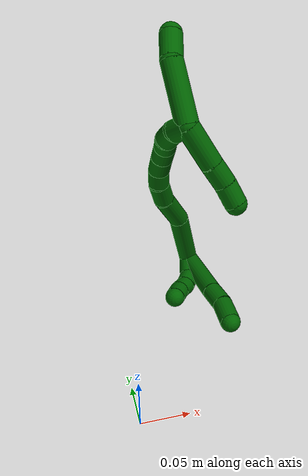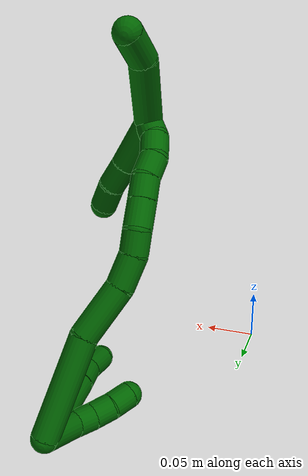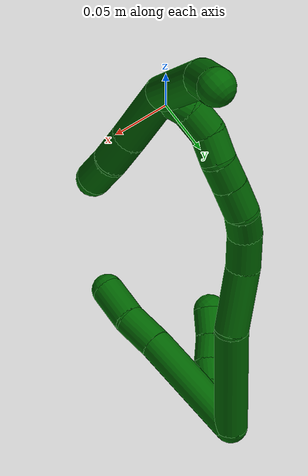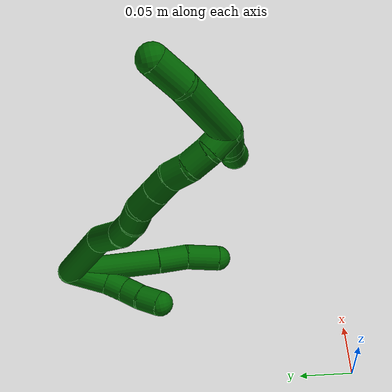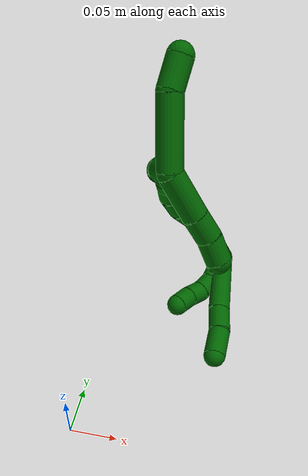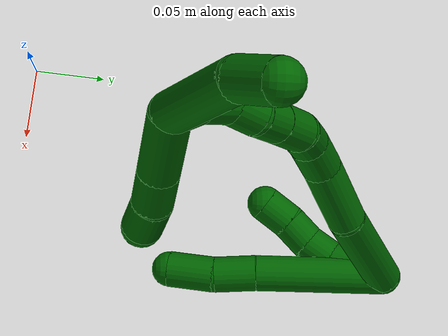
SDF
<sdf version="1.7">
 <world name="default">
  <model name="6">
   <static>0</static>
   <link name="6">
    <collision name="collision-cylinder-e_1_2_8">
     <pose>-0.003404 0.007132 -0.043475 -2.97899 -0.07711 0.884293</pose>
     <geometry><cylinder><radius>0.0125</radius><length>0.088376</length></cylinder></geometry>
     <surface>
      <friction><ode><mu>1.16</mu><mu2>1.16</mu2><slip1>0</slip1><slip2>0</slip2></ode></friction>
      <contact><ode><kp>1e+06</kp><kd>1</kd><max_vel>0</max_vel><min_depth>0.001</min_depth></ode></contact>
     </surface>
    </collision>
    <visual name="visual-cylinder-e_1_2_8">
     <pose>-0.003404 0.007132 -0.043475 -2.97899 -0.07711 0.884293</pose>
     <geometry><cylinder><radius>0.0125</radius><length>0.088376</length></cylinder></geometry>
     <material><ambient>0 0.392157 0.003922 1</ambient></material>
    </visual>
    <collision name="collision-cylinder-e_2_8_9">
     <pose>-0.007158 0.017228 -0.10125 -2.93723 -0.02398 0.232819</pose>
     <geometry><cylinder><radius>0.0125</radius><length>0.029214</length></cylinder></geometry>
     <surface>
      <friction><ode><mu>1.16</mu><mu2>1.16</mu2><slip1>0</slip1><slip2>0</slip2></ode></friction>
      <contact><ode><kp>1e+06</kp><kd>1</kd><max_vel>0</max_vel><min_depth>0.001</min_depth></ode></contact>
     </surface>
    </collision>
    <visual name="visual-cylinder-e_2_8_9">
     <pose>-0.007158 0.017228 -0.10125 -2.93723 -0.02398 0.232819</pose>
     <geometry><cylinder><radius>0.0125</radius><length>0.029214</length></cylinder></geometry>
     <material><ambient>0 0.392157 0.003922 1</ambient></material>
    </visual>
    <collision name="collision-cylinder-e_3_9_6">
     <pose>-0.011033 0.023818 -0.130945 -2.91029 -0.219235 1.5168</pose>
     <geometry><cylinder><radius>0.0125</radius><length>0.03241</length></cylinder></geometry>
     <surface>
      <friction><ode><mu>1.16</mu><mu2>1.16</mu2><slip1>0</slip1><slip2>0</slip2></ode></friction>
      <contact><ode><kp>1e+06</kp><kd>1</kd><max_vel>0</max_vel><min_depth>0.001</min_depth></ode></contact>
     </surface>
    </collision>
    <visual name="visual-cylinder-e_3_9_6">
     <pose>-0.011033 0.023818 -0.130945 -2.91029 -0.219235 1.5168</pose>
     <geometry><cylinder><radius>0.0125</radius><length>0.03241</length></cylinder></geometry>
     <material><ambient>0 0.392157 0.003922 1</ambient></material>
    </visual>
    <collision name="collision-cylinder-e_1_2_10">
     <pose>-0.008326 0.004531 -0.016481 -2.87332 -0.453306 2.08274</pose>
     <geometry><cylinder><radius>0.0125</radius><length>0.038025</length></cylinder></geometry>
     <surface>
      <friction><ode><mu>1.16</mu><mu2>1.16</mu2><slip1>0</slip1><slip2>0</slip2></ode></friction>
      <contact><ode><kp>1e+06</kp><kd>1</kd><max_vel>0</max_vel><min_depth>0.001</min_depth></ode></contact>
     </surface>
    </collision>
    <visual name="visual-cylinder-e_1_2_10">
     <pose>-0.008326 0.004531 -0.016481 -2.87332 -0.453306 2.08274</pose>
     <geometry><cylinder><radius>0.0125</radius><length>0.038025</length></cylinder></geometry>
     <material><ambient>0 0.392157 0.003922 1</ambient></material>
    </visual>
    <collision name="collision-cylinder-e_2_10_11">
     <pose>-0.023018 0.008917 -0.041141 3.12397 -0.661236 -3.09027</pose>
     <geometry><cylinder><radius>0.0125</radius><length>0.020729</length></cylinder></geometry>
     <surface>
      <friction><ode><mu>1.16</mu><mu2>1.16</mu2><slip1>0</slip1><slip2>0</slip2></ode></friction>
      <contact><ode><kp>1e+06</kp><kd>1</kd><max_vel>0</max_vel><min_depth>0.001</min_depth></ode></contact>
     </surface>
    </collision>
    <visual name="visual-cylinder-e_2_10_11">
     <pose>-0.023018 0.008917 -0.041141 3.12397 -0.661236 -3.09027</pose>
     <geometry><cylinder><radius>0.0125</radius><length>0.020729</length></cylinder></geometry>
     <material><ambient>0 0.392157 0.003922 1</ambient></material>
    </visual>
    <collision name="collision-cylinder-e_3_11_12">
     <pose>-0.035861 0.005811 -0.056418 2.7463 -0.699982 -2.13801</pose>
     <geometry><cylinder><radius>0.0125</radius><length>0.020114</length></cylinder></geometry>
     <surface>
      <friction><ode><mu>1.16</mu><mu2>1.16</mu2><slip1>0</slip1><slip2>0</slip2></ode></friction>
      <contact><ode><kp>1e+06</kp><kd>1</kd><max_vel>0</max_vel><min_depth>0.001</min_depth></ode></contact>
     </surface>
    </collision>
    <visual name="visual-cylinder-e_3_11_12">
     <pose>-0.035861 0.005811 -0.056418 2.7463 -0.699982 -2.13801</pose>
     <geometry><cylinder><radius>0.0125</radius><length>0.020114</length></cylinder></geometry>
     <material><ambient>0 0.392157 0.003922 1</ambient></material>
    </visual>
    <collision name="collision-cylinder-e_4_12_5">
     <pose>-0.048076 0.00048 -0.072069 2.8714 -0.57389 -2.27828</pose>
     <geometry><cylinder><radius>0.0125</radius><length>0.021132</length></cylinder></geometry>
     <surface>
      <friction><ode><mu>1.16</mu><mu2>1.16</mu2><slip1>0</slip1><slip2>0</slip2></ode></friction>
      <contact><ode><kp>1e+06</kp><kd>1</kd><max_vel>0</max_vel><min_depth>0.001</min_depth></ode></contact>
     </surface>
    </collision>
    <visual name="visual-cylinder-e_4_12_5">
     <pose>-0.048076 0.00048 -0.072069 2.8714 -0.57389 -2.27828</pose>
     <geometry><cylinder><radius>0.0125</radius><length>0.021132</length></cylinder></geometry>
     <material><ambient>0 0.392157 0.003922 1</ambient></material>
    </visual>
    <collision name="collision-cylinder-e_1_2_13">
     <pose>-0.000531 -0.041052 -0.022065 2.06399 -0.011384 -0.019042</pose>
     <geometry><cylinder><radius>0.0125</radius><length>0.093219</length></cylinder></geometry>
     <surface>
      <friction><ode><mu>1.16</mu><mu2>1.16</mu2><slip1>0</slip1><slip2>0</slip2></ode></friction>
      <contact><ode><kp>1e+06</kp><kd>1</kd><max_vel>0</max_vel><min_depth>0.001</min_depth></ode></contact>
     </surface>
    </collision>
    <visual name="visual-cylinder-e_1_2_13">
     <pose>-0.000531 -0.041052 -0.022065 2.06399 -0.011384 -0.019042</pose>
     <geometry><cylinder><radius>0.0125</radius><length>0.093219</length></cylinder></geometry>
     <material><ambient>0 0.392157 0.003922 1</ambient></material>
    </visual>
    <collision name="collision-cylinder-e_2_13_14">
     <pose>-0.007951 -0.103319 -0.056228 2.08906 -0.27499 -0.467669</pose>
     <geometry><cylinder><radius>0.0125</radius><length>0.05075</length></cylinder></geometry>
     <surface>
      <friction><ode><mu>1.16</mu><mu2>1.16</mu2><slip1>0</slip1><slip2>0</slip2></ode></friction>
      <contact><ode><kp>1e+06</kp><kd>1</kd><max_vel>0</max_vel><min_depth>0.001</min_depth></ode></contact>
     </surface>
    </collision>
    <visual name="visual-cylinder-e_2_13_14">
     <pose>-0.007951 -0.103319 -0.056228 2.08906 -0.27499 -0.467669</pose>
     <geometry><cylinder><radius>0.0125</radius><length>0.05075</length></cylinder></geometry>
     <material><ambient>0 0.392157 0.003922 1</ambient></material>
    </visual>
    <collision name="collision-cylinder-e_3_14_15">
     <pose>-0.015504 -0.13742 -0.075018 2.04974 -0.045599 -0.075037</pose>
     <geometry><cylinder><radius>0.0125</radius><length>0.02907</length></cylinder></geometry>
     <surface>
      <friction><ode><mu>1.16</mu><mu2>1.16</mu2><slip1>0</slip1><slip2>0</slip2></ode></friction>
      <contact><ode><kp>1e+06</kp><kd>1</kd><max_vel>0</max_vel><min_depth>0.001</min_depth></ode></contact>
     </surface>
    </collision>
    <visual name="visual-cylinder-e_3_14_15">
     <pose>-0.015504 -0.13742 -0.075018 2.04974 -0.045599 -0.075037</pose>
     <geometry><cylinder><radius>0.0125</radius><length>0.02907</length></cylinder></geometry>
     <material><ambient>0 0.392157 0.003922 1</ambient></material>
    </visual>
    <collision name="collision-cylinder-e_4_15_16">
     <pose>-0.014039 -0.159515 -0.086182 2.02296 0.204871 0.325513</pose>
     <geometry><cylinder><radius>0.0125</radius><length>0.020913</length></cylinder></geometry>
     <surface>
      <friction><ode><mu>1.16</mu><mu2>1.16</mu2><slip1>0</slip1><slip2>0</slip2></ode></friction>
      <contact><ode><kp>1e+06</kp><kd>1</kd><max_vel>0</max_vel><min_depth>0.001</min_depth></ode></contact>
     </surface>
    </collision>
    <visual name="visual-cylinder-e_4_15_16">
     <pose>-0.014039 -0.159515 -0.086182 2.02296 0.204871 0.325513</pose>
     <geometry><cylinder><radius>0.0125</radius><length>0.020913</length></cylinder></geometry>
     <material><ambient>0 0.392157 0.003922 1</ambient></material>
    </visual>
    <collision name="collision-cylinder-e_5_16_17">
     <pose>-0.009461 -0.177343 -0.099171 2.35016 0.199609 0.470533</pose>
     <geometry><cylinder><radius>0.0125</radius><length>0.024723</length></cylinder></geometry>
     <surface>
      <friction><ode><mu>1.16</mu><mu2>1.16</mu2><slip1>0</slip1><slip2>0</slip2></ode></friction>
      <contact><ode><kp>1e+06</kp><kd>1</kd><max_vel>0</max_vel><min_depth>0.001</min_depth></ode></contact>
     </surface>
    </collision>
    <visual name="visual-cylinder-e_5_16_17">
     <pose>-0.009461 -0.177343 -0.099171 2.35016 0.199609 0.470533</pose>
     <geometry><cylinder><radius>0.0125</radius><length>0.024723</length></cylinder></geometry>
     <material><ambient>0 0.392157 0.003922 1</ambient></material>
    </visual>
    <collision name="collision-cylinder-e_6_17_18">
     <pose>-0.004872 -0.192815 -0.11471 2.36846 0.214469 0.517084</pose>
     <geometry><cylinder><radius>0.0125</radius><length>0.020087</length></cylinder></geometry>
     <surface>
      <friction><ode><mu>1.16</mu><mu2>1.16</mu2><slip1>0</slip1><slip2>0</slip2></ode></friction>
      <contact><ode><kp>1e+06</kp><kd>1</kd><max_vel>0</max_vel><min_depth>0.001</min_depth></ode></contact>
     </surface>
    </collision>
    <visual name="visual-cylinder-e_6_17_18">
     <pose>-0.004872 -0.192815 -0.11471 2.36846 0.214469 0.517084</pose>
     <geometry><cylinder><radius>0.0125</radius><length>0.020087</length></cylinder></geometry>
     <material><ambient>0 0.392157 0.003922 1</ambient></material>
    </visual>
    <collision name="collision-cylinder-e_7_18_19">
     <pose>-0.002755 -0.205569 -0.130133 2.52921 -0.001956 -0.006188</pose>
     <geometry><cylinder><radius>0.0125</radius><length>0.020529</length></cylinder></geometry>
     <surface>
      <friction><ode><mu>1.16</mu><mu2>1.16</mu2><slip1>0</slip1><slip2>0</slip2></ode></friction>
      <contact><ode><kp>1e+06</kp><kd>1</kd><max_vel>0</max_vel><min_depth>0.001</min_depth></ode></contact>
     </surface>
    </collision>
    <visual name="visual-cylinder-e_7_18_19">
     <pose>-0.002755 -0.205569 -0.130133 2.52921 -0.001956 -0.006188</pose>
     <geometry><cylinder><radius>0.0125</radius><length>0.020529</length></cylinder></geometry>
     <material><ambient>0 0.392157 0.003922 1</ambient></material>
    </visual>
    <collision name="collision-cylinder-e_8_19_20">
     <pose>0.000156 -0.215874 -0.147322 2.67701 0.289697 1.10511</pose>
     <geometry><cylinder><radius>0.0125</radius><length>0.020518</length></cylinder></geometry>
     <surface>
      <friction><ode><mu>1.16</mu><mu2>1.16</mu2><slip1>0</slip1><slip2>0</slip2></ode></friction>
      <contact><ode><kp>1e+06</kp><kd>1</kd><max_vel>0</max_vel><min_depth>0.001</min_depth></ode></contact>
     </surface>
    </collision>
    <visual name="visual-cylinder-e_8_19_20">
     <pose>0.000156 -0.215874 -0.147322 2.67701 0.289697 1.10511</pose>
     <geometry><cylinder><radius>0.0125</radius><length>0.020518</length></cylinder></geometry>
     <material><ambient>0 0.392157 0.003922 1</ambient></material>
    </visual>
    <collision name="collision-cylinder-e_9_20_1">
     <pose>0.008283 -0.222001 -0.164593 2.94134 0.540729 2.44608</pose>
     <geometry><cylinder><radius>0.0125</radius><length>0.020191</length></cylinder></geometry>
     <surface>
      <friction><ode><mu>1.16</mu><mu2>1.16</mu2><slip1>0</slip1><slip2>0</slip2></ode></friction>
      <contact><ode><kp>1e+06</kp><kd>1</kd><max_vel>0</max_vel><min_depth>0.001</min_depth></ode></contact>
     </surface>
    </collision>
    <visual name="visual-cylinder-e_9_20_1">
     <pose>0.008283 -0.222001 -0.164593 2.94134 0.540729 2.44608</pose>
     <geometry><cylinder><radius>0.0125</radius><length>0.020191</length></cylinder></geometry>
     <material><ambient>0 0.392157 0.003922 1</ambient></material>
    </visual>
    <collision name="collision-cylinder-e_1_1_21">
     <pose>0.022078 -0.254407 -0.159959 1.16684 0.252198 0.166966</pose>
     <geometry><cylinder><radius>0.0125</radius><length>0.06892</length></cylinder></geometry>
     <surface>
      <friction><ode><mu>1.16</mu><mu2>1.16</mu2><slip1>0</slip1><slip2>0</slip2></ode></friction>
      <contact><ode><kp>1e+06</kp><kd>1</kd><max_vel>0</max_vel><min_depth>0.001</min_depth></ode></contact>
     </surface>
    </collision>
    <visual name="visual-cylinder-e_1_1_21">
     <pose>0.022078 -0.254407 -0.159959 1.16684 0.252198 0.166966</pose>
     <geometry><cylinder><radius>0.0125</radius><length>0.06892</length></cylinder></geometry>
     <material><ambient>0 0.392157 0.003922 1</ambient></material>
    </visual>
    <collision name="collision-cylinder-e_2_21_4">
     <pose>0.03806 -0.295837 -0.138386 0.904067 0.495045 0.244189</pose>
     <geometry><cylinder><radius>0.0125</radius><length>0.03108</length></cylinder></geometry>
     <surface>
      <friction><ode><mu>1.16</mu><mu2>1.16</mu2><slip1>0</slip1><slip2>0</slip2></ode></friction>
      <contact><ode><kp>1e+06</kp><kd>1</kd><max_vel>0</max_vel><min_depth>0.001</min_depth></ode></contact>
     </surface>
    </collision>
    <visual name="visual-cylinder-e_2_21_4">
     <pose>0.03806 -0.295837 -0.138386 0.904067 0.495045 0.244189</pose>
     <geometry><cylinder><radius>0.0125</radius><length>0.03108</length></cylinder></geometry>
     <material><ambient>0 0.392157 0.003922 1</ambient></material>
    </visual>
    <collision name="collision-cylinder-e_1_1_22">
     <pose>0.018245 -0.200213 -0.173962 -1.6085 0.199858 -0.207485</pose>
     <geometry><cylinder><radius>0.0125</radius><length>0.048008</length></cylinder></geometry>
     <surface>
      <friction><ode><mu>1.16</mu><mu2>1.16</mu2><slip1>0</slip1><slip2>0</slip2></ode></friction>
      <contact><ode><kp>1e+06</kp><kd>1</kd><max_vel>0</max_vel><min_depth>0.001</min_depth></ode></contact>
     </surface>
    </collision>
    <visual name="visual-cylinder-e_1_1_22">
     <pose>0.018245 -0.200213 -0.173962 -1.6085 0.199858 -0.207485</pose>
     <geometry><cylinder><radius>0.0125</radius><length>0.048008</length></cylinder></geometry>
     <material><ambient>0 0.392157 0.003922 1</ambient></material>
    </visual>
    <collision name="collision-cylinder-e_2_22_23">
     <pose>0.026056 -0.163976 -0.175436 -1.61693 0.234586 -0.245558</pose>
     <geometry><cylinder><radius>0.0125</radius><length>0.026201</length></cylinder></geometry>
     <surface>
      <friction><ode><mu>1.16</mu><mu2>1.16</mu2><slip1>0</slip1><slip2>0</slip2></ode></friction>
      <contact><ode><kp>1e+06</kp><kd>1</kd><max_vel>0</max_vel><min_depth>0.001</min_depth></ode></contact>
     </surface>
    </collision>
    <visual name="visual-cylinder-e_2_22_23">
     <pose>0.026056 -0.163976 -0.175436 -1.61693 0.234586 -0.245558</pose>
     <geometry><cylinder><radius>0.0125</radius><length>0.026201</length></cylinder></geometry>
     <material><ambient>0 0.392157 0.003922 1</ambient></material>
    </visual>
    <collision name="collision-cylinder-e_3_23_3">
     <pose>0.030285 -0.138546 -0.177914 -1.71854 0.091963 -0.106637</pose>
     <geometry><cylinder><radius>0.0125</radius><length>0.025791</length></cylinder></geometry>
     <surface>
      <friction><ode><mu>1.16</mu><mu2>1.16</mu2><slip1>0</slip1><slip2>0</slip2></ode></friction>
      <contact><ode><kp>1e+06</kp><kd>1</kd><max_vel>0</max_vel><min_depth>0.001</min_depth></ode></contact>
     </surface>
    </collision>
    <visual name="visual-cylinder-e_3_23_3">
     <pose>0.030285 -0.138546 -0.177914 -1.71854 0.091963 -0.106637</pose>
     <geometry><cylinder><radius>0.0125</radius><length>0.025791</length></cylinder></geometry>
     <material><ambient>0 0.392157 0.003922 1</ambient></material>
    </visual>
    <collision name="collision-sphere-3">
     <pose>0.031469 -0.125845 -0.179805 0 -0 0</pose>
     <geometry><sphere><radius>0.0125</radius></sphere></geometry>
     <surface>
      <friction><ode><mu>1.16</mu><mu2>1.16</mu2><slip1>0</slip1><slip2>0</slip2></ode></friction>
      <contact><ode><kp>1e+06</kp><kd>1</kd><max_vel>0</max_vel><min_depth>0.001</min_depth></ode></contact>
     </surface>
    </collision>
    <visual name="visual-sphere-3">
     <pose>0.031469 -0.125845 -0.179805 0 -0 0</pose>
     <geometry><sphere><radius>0.0125</radius></sphere></geometry>
     <material><ambient>0 0.392157 0.003922 1</ambient></material>
    </visual>
    <collision name="collision-sphere-23">
     <pose>0.029101 -0.151248 -0.176024 0 -0 0</pose>
     <geometry><sphere><radius>0.0125</radius></sphere></geometry>
     <surface>
      <friction><ode><mu>1.16</mu><mu2>1.16</mu2><slip1>0</slip1><slip2>0</slip2></ode></friction>
      <contact><ode><kp>1e+06</kp><kd>1</kd><max_vel>0</max_vel><min_depth>0.001</min_depth></ode></contact>
     </surface>
    </collision>
    <visual name="visual-sphere-23">
     <pose>0.029101 -0.151248 -0.176024 0 -0 0</pose>
     <geometry><sphere><radius>0.0125</radius></sphere></geometry>
     <material><ambient>0 0.392157 0.003922 1</ambient></material>
    </visual>
    <collision name="collision-sphere-22">
     <pose>0.023011 -0.176704 -0.174849 0 -0 0</pose>
     <geometry><sphere><radius>0.0125</radius></sphere></geometry>
     <surface>
      <friction><ode><mu>1.16</mu><mu2>1.16</mu2><slip1>0</slip1><slip2>0</slip2></ode></friction>
      <contact><ode><kp>1e+06</kp><kd>1</kd><max_vel>0</max_vel><min_depth>0.001</min_depth></ode></contact>
     </surface>
    </collision>
    <visual name="visual-sphere-22">
     <pose>0.023011 -0.176704 -0.174849 0 -0 0</pose>
     <geometry><sphere><radius>0.0125</radius></sphere></geometry>
     <material><ambient>0 0.392157 0.003922 1</ambient></material>
    </visual>
    <collision name="collision-sphere-4">
     <pose>0.045443 -0.306583 -0.12993 0 -0 0</pose>
     <geometry><sphere><radius>0.0125</radius></sphere></geometry>
     <surface>
      <friction><ode><mu>1.16</mu><mu2>1.16</mu2><slip1>0</slip1><slip2>0</slip2></ode></friction>
      <contact><ode><kp>1e+06</kp><kd>1</kd><max_vel>0</max_vel><min_depth>0.001</min_depth></ode></contact>
     </surface>
    </collision>
    <visual name="visual-sphere-4">
     <pose>0.045443 -0.306583 -0.12993 0 -0 0</pose>
     <geometry><sphere><radius>0.0125</radius></sphere></geometry>
     <material><ambient>0 0.392157 0.003922 1</ambient></material>
    </visual>
    <collision name="collision-sphere-21">
     <pose>0.030677 -0.285091 -0.146843 0 -0 0</pose>
     <geometry><sphere><radius>0.0125</radius></sphere></geometry>
     <surface>
      <friction><ode><mu>1.16</mu><mu2>1.16</mu2><slip1>0</slip1><slip2>0</slip2></ode></friction>
      <contact><ode><kp>1e+06</kp><kd>1</kd><max_vel>0</max_vel><min_depth>0.001</min_depth></ode></contact>
     </surface>
    </collision>
    <visual name="visual-sphere-21">
     <pose>0.030677 -0.285091 -0.146843 0 -0 0</pose>
     <geometry><sphere><radius>0.0125</radius></sphere></geometry>
     <material><ambient>0 0.392157 0.003922 1</ambient></material>
    </visual>
    <collision name="collision-sphere-1">
     <pose>0.01348 -0.223723 -0.173075 0 -0 0</pose>
     <geometry><sphere><radius>0.0125</radius></sphere></geometry>
     <surface>
      <friction><ode><mu>1.16</mu><mu2>1.16</mu2><slip1>0</slip1><slip2>0</slip2></ode></friction>
      <contact><ode><kp>1e+06</kp><kd>1</kd><max_vel>0</max_vel><min_depth>0.001</min_depth></ode></contact>
     </surface>
    </collision>
    <visual name="visual-sphere-1">
     <pose>0.01348 -0.223723 -0.173075 0 -0 0</pose>
     <geometry><sphere><radius>0.0125</radius></sphere></geometry>
     <material><ambient>0 0.392157 0.003922 1</ambient></material>
    </visual>
    <collision name="collision-sphere-11">
     <pose>-0.029382 0.008773 -0.04932 0 -0 0</pose>
     <geometry><sphere><radius>0.0125</radius></sphere></geometry>
     <surface>
      <friction><ode><mu>1.16</mu><mu2>1.16</mu2><slip1>0</slip1><slip2>0</slip2></ode></friction>
      <contact><ode><kp>1e+06</kp><kd>1</kd><max_vel>0</max_vel><min_depth>0.001</min_depth></ode></contact>
     </surface>
    </collision>
    <visual name="visual-sphere-11">
     <pose>-0.029382 0.008773 -0.04932 0 -0 0</pose>
     <geometry><sphere><radius>0.0125</radius></sphere></geometry>
     <material><ambient>0 0.392157 0.003922 1</ambient></material>
    </visual>
    <collision name="collision-sphere-10">
     <pose>-0.016653 0.009061 -0.032962 0 -0 0</pose>
     <geometry><sphere><radius>0.0125</radius></sphere></geometry>
     <surface>
      <friction><ode><mu>1.16</mu><mu2>1.16</mu2><slip1>0</slip1><slip2>0</slip2></ode></friction>
      <contact><ode><kp>1e+06</kp><kd>1</kd><max_vel>0</max_vel><min_depth>0.001</min_depth></ode></contact>
     </surface>
    </collision>
    <visual name="visual-sphere-10">
     <pose>-0.016653 0.009061 -0.032962 0 -0 0</pose>
     <geometry><sphere><radius>0.0125</radius></sphere></geometry>
     <material><ambient>0 0.392157 0.003922 1</ambient></material>
    </visual>
    <collision name="collision-sphere-6">
     <pose>-0.014557 0.027444 -0.146341 0 -0 0</pose>
     <geometry><sphere><radius>0.0125</radius></sphere></geometry>
     <surface>
      <friction><ode><mu>1.16</mu><mu2>1.16</mu2><slip1>0</slip1><slip2>0</slip2></ode></friction>
      <contact><ode><kp>1e+06</kp><kd>1</kd><max_vel>0</max_vel><min_depth>0.001</min_depth></ode></contact>
     </surface>
    </collision>
    <visual name="visual-sphere-6">
     <pose>-0.014557 0.027444 -0.146341 0 -0 0</pose>
     <geometry><sphere><radius>0.0125</radius></sphere></geometry>
     <material><ambient>0 0.392157 0.003922 1</ambient></material>
    </visual>
    <collision name="collision-sphere-9">
     <pose>-0.007508 0.020192 -0.115548 0 -0 0</pose>
     <geometry><sphere><radius>0.0125</radius></sphere></geometry>
     <surface>
      <friction><ode><mu>1.16</mu><mu2>1.16</mu2><slip1>0</slip1><slip2>0</slip2></ode></friction>
      <contact><ode><kp>1e+06</kp><kd>1</kd><max_vel>0</max_vel><min_depth>0.001</min_depth></ode></contact>
     </surface>
    </collision>
    <visual name="visual-sphere-9">
     <pose>-0.007508 0.020192 -0.115548 0 -0 0</pose>
     <geometry><sphere><radius>0.0125</radius></sphere></geometry>
     <material><ambient>0 0.392157 0.003922 1</ambient></material>
    </visual>
    <collision name="collision-sphere-2">
     <geometry><sphere><radius>0.0125</radius></sphere></geometry>
     <surface>
      <friction><ode><mu>1.16</mu><mu2>1.16</mu2><slip1>0</slip1><slip2>0</slip2></ode></friction>
      <contact><ode><kp>1e+06</kp><kd>1</kd><max_vel>0</max_vel><min_depth>0.001</min_depth></ode></contact>
     </surface>
    </collision>
    <visual name="visual-sphere-2">
     <geometry><sphere><radius>0.0125</radius></sphere></geometry>
     <material><ambient>0 0.392157 0.003922 1</ambient></material>
    </visual>
    <collision name="collision-sphere-19">
     <pose>-0.002775 -0.211469 -0.138532 0 -0 0</pose>
     <geometry><sphere><radius>0.0125</radius></sphere></geometry>
     <surface>
      <friction><ode><mu>1.16</mu><mu2>1.16</mu2><slip1>0</slip1><slip2>0</slip2></ode></friction>
      <contact><ode><kp>1e+06</kp><kd>1</kd><max_vel>0</max_vel><min_depth>0.001</min_depth></ode></contact>
     </surface>
    </collision>
    <visual name="visual-sphere-19">
     <pose>-0.002775 -0.211469 -0.138532 0 -0 0</pose>
     <geometry><sphere><radius>0.0125</radius></sphere></geometry>
     <material><ambient>0 0.392157 0.003922 1</ambient></material>
    </visual>
    <collision name="collision-sphere-8">
     <pose>-0.006808 0.014265 -0.086951 0 -0 0</pose>
     <geometry><sphere><radius>0.0125</radius></sphere></geometry>
     <surface>
      <friction><ode><mu>1.16</mu><mu2>1.16</mu2><slip1>0</slip1><slip2>0</slip2></ode></friction>
      <contact><ode><kp>1e+06</kp><kd>1</kd><max_vel>0</max_vel><min_depth>0.001</min_depth></ode></contact>
     </surface>
    </collision>
    <visual name="visual-sphere-8">
     <pose>-0.006808 0.014265 -0.086951 0 -0 0</pose>
     <geometry><sphere><radius>0.0125</radius></sphere></geometry>
     <material><ambient>0 0.392157 0.003922 1</ambient></material>
    </visual>
    <collision name="collision-sphere-12">
     <pose>-0.04234 0.002849 -0.063517 0 -0 0</pose>
     <geometry><sphere><radius>0.0125</radius></sphere></geometry>
     <surface>
      <friction><ode><mu>1.16</mu><mu2>1.16</mu2><slip1>0</slip1><slip2>0</slip2></ode></friction>
      <contact><ode><kp>1e+06</kp><kd>1</kd><max_vel>0</max_vel><min_depth>0.001</min_depth></ode></contact>
     </surface>
    </collision>
    <visual name="visual-sphere-12">
     <pose>-0.04234 0.002849 -0.063517 0 -0 0</pose>
     <geometry><sphere><radius>0.0125</radius></sphere></geometry>
     <material><ambient>0 0.392157 0.003922 1</ambient></material>
    </visual>
    <collision name="collision-sphere-5">
     <pose>-0.053812 -0.001888 -0.08062 0 -0 0</pose>
     <geometry><sphere><radius>0.0125</radius></sphere></geometry>
     <surface>
      <friction><ode><mu>1.16</mu><mu2>1.16</mu2><slip1>0</slip1><slip2>0</slip2></ode></friction>
      <contact><ode><kp>1e+06</kp><kd>1</kd><max_vel>0</max_vel><min_depth>0.001</min_depth></ode></contact>
     </surface>
    </collision>
    <visual name="visual-sphere-5">
     <pose>-0.053812 -0.001888 -0.08062 0 -0 0</pose>
     <geometry><sphere><radius>0.0125</radius></sphere></geometry>
     <material><ambient>0 0.392157 0.003922 1</ambient></material>
    </visual>
    <collision name="collision-sphere-13">
     <pose>-0.001061 -0.082104 -0.044131 0 -0 0</pose>
     <geometry><sphere><radius>0.0125</radius></sphere></geometry>
     <surface>
      <friction><ode><mu>1.16</mu><mu2>1.16</mu2><slip1>0</slip1><slip2>0</slip2></ode></friction>
      <contact><ode><kp>1e+06</kp><kd>1</kd><max_vel>0</max_vel><min_depth>0.001</min_depth></ode></contact>
     </surface>
    </collision>
    <visual name="visual-sphere-13">
     <pose>-0.001061 -0.082104 -0.044131 0 -0 0</pose>
     <geometry><sphere><radius>0.0125</radius></sphere></geometry>
     <material><ambient>0 0.392157 0.003922 1</ambient></material>
    </visual>
    <collision name="collision-sphere-14">
     <pose>-0.014842 -0.124533 -0.068326 0 -0 0</pose>
     <geometry><sphere><radius>0.0125</radius></sphere></geometry>
     <surface>
      <friction><ode><mu>1.16</mu><mu2>1.16</mu2><slip1>0</slip1><slip2>0</slip2></ode></friction>
      <contact><ode><kp>1e+06</kp><kd>1</kd><max_vel>0</max_vel><min_depth>0.001</min_depth></ode></contact>
     </surface>
    </collision>
    <visual name="visual-sphere-14">
     <pose>-0.014842 -0.124533 -0.068326 0 -0 0</pose>
     <geometry><sphere><radius>0.0125</radius></sphere></geometry>
     <material><ambient>0 0.392157 0.003922 1</ambient></material>
    </visual>
    <collision name="collision-sphere-15">
     <pose>-0.016167 -0.150306 -0.081709 0 -0 0</pose>
     <geometry><sphere><radius>0.0125</radius></sphere></geometry>
     <surface>
      <friction><ode><mu>1.16</mu><mu2>1.16</mu2><slip1>0</slip1><slip2>0</slip2></ode></friction>
      <contact><ode><kp>1e+06</kp><kd>1</kd><max_vel>0</max_vel><min_depth>0.001</min_depth></ode></contact>
     </surface>
    </collision>
    <visual name="visual-sphere-15">
     <pose>-0.016167 -0.150306 -0.081709 0 -0 0</pose>
     <geometry><sphere><radius>0.0125</radius></sphere></geometry>
     <material><ambient>0 0.392157 0.003922 1</ambient></material>
    </visual>
    <collision name="collision-sphere-16">
     <pose>-0.011912 -0.168724 -0.090655 0 -0 0</pose>
     <geometry><sphere><radius>0.0125</radius></sphere></geometry>
     <surface>
      <friction><ode><mu>1.16</mu><mu2>1.16</mu2><slip1>0</slip1><slip2>0</slip2></ode></friction>
      <contact><ode><kp>1e+06</kp><kd>1</kd><max_vel>0</max_vel><min_depth>0.001</min_depth></ode></contact>
     </surface>
    </collision>
    <visual name="visual-sphere-16">
     <pose>-0.011912 -0.168724 -0.090655 0 -0 0</pose>
     <geometry><sphere><radius>0.0125</radius></sphere></geometry>
     <material><ambient>0 0.392157 0.003922 1</ambient></material>
    </visual>
    <collision name="collision-sphere-17">
     <pose>-0.00701 -0.185962 -0.107686 0 -0 0</pose>
     <geometry><sphere><radius>0.0125</radius></sphere></geometry>
     <surface>
      <friction><ode><mu>1.16</mu><mu2>1.16</mu2><slip1>0</slip1><slip2>0</slip2></ode></friction>
      <contact><ode><kp>1e+06</kp><kd>1</kd><max_vel>0</max_vel><min_depth>0.001</min_depth></ode></contact>
     </surface>
    </collision>
    <visual name="visual-sphere-17">
     <pose>-0.00701 -0.185962 -0.107686 0 -0 0</pose>
     <geometry><sphere><radius>0.0125</radius></sphere></geometry>
     <material><ambient>0 0.392157 0.003922 1</ambient></material>
    </visual>
    <collision name="collision-sphere-18">
     <pose>-0.002735 -0.199669 -0.121734 0 -0 0</pose>
     <geometry><sphere><radius>0.0125</radius></sphere></geometry>
     <surface>
      <friction><ode><mu>1.16</mu><mu2>1.16</mu2><slip1>0</slip1><slip2>0</slip2></ode></friction>
      <contact><ode><kp>1e+06</kp><kd>1</kd><max_vel>0</max_vel><min_depth>0.001</min_depth></ode></contact>
     </surface>
    </collision>
    <visual name="visual-sphere-18">
     <pose>-0.002735 -0.199669 -0.121734 0 -0 0</pose>
     <geometry><sphere><radius>0.0125</radius></sphere></geometry>
     <material><ambient>0 0.392157 0.003922 1</ambient></material>
    </visual>
    <collision name="collision-sphere-20">
     <pose>0.003086 -0.220279 -0.156111 0 -0 0</pose>
     <geometry><sphere><radius>0.0125</radius></sphere></geometry>
     <surface>
      <friction><ode><mu>1.16</mu><mu2>1.16</mu2><slip1>0</slip1><slip2>0</slip2></ode></friction>
      <contact><ode><kp>1e+06</kp><kd>1</kd><max_vel>0</max_vel><min_depth>0.001</min_depth></ode></contact>
     </surface>
    </collision>
    <visual name="visual-sphere-20">
     <pose>0.003086 -0.220279 -0.156111 0 -0 0</pose>
     <geometry><sphere><radius>0.0125</radius></sphere></geometry>
     <material><ambient>0 0.392157 0.003922 1</ambient></material>
    </visual>
    <inertial>
     <pose>0.000307 -0.106147 -0.094281 0 -0 0</pose>
     <mass>0.75</mass>
     <inertia>
      <ixx>0.000229</ixx>
      <ixy>0</ixy>
      <ixz>0</ixz>
      <iyy>-2.1e-05</iyy>
      <iyz>0</iyz>
      <izz>5.6e-05</izz>
     </inertia>
    </inertial>
   </link>
   <pose>0.120932 0.266091 0.02213 -1.71411 -0.319603 0.166079</pose>
  </model>
 </world>
</sdf>
